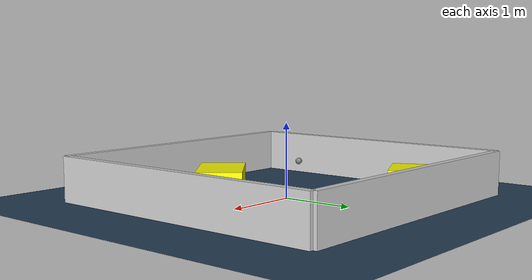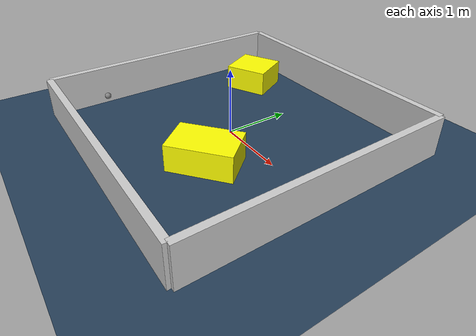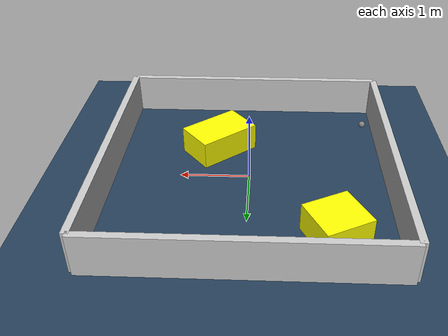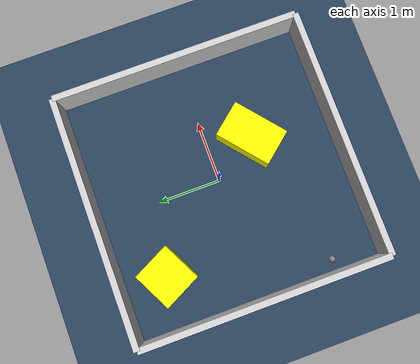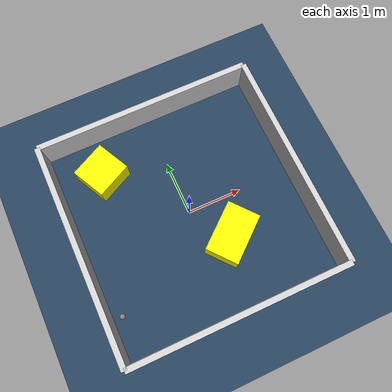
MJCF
<?xml version="1.0" ?>
<mujoco model="generated_environment">
  <option timestep="0.01" integrator="RK4" cone="elliptic"/>
  <default>
    <geom density="1"/>
  </default>
  <asset>
    <texture builtin="gradient" height="3072" rgb1="0.3 0.5 0.7" rgb2="0 0 0" type="skybox" width="512"/>
    <texture builtin="checker" height="300" mark="edge" markrgb="0.8 0.8 0.8" name="groundplane" rgb1="0.2 0.3 0.4" rgb2="0.1 0.2 0.3" type="2d" width="300"/>
    <material name="groundplane" reflectance="0.2" texrepeat="5 5" texture="groundplane" texuniform="true"/>
    <material name="robot" rgba="0.0 1.0 0.0 1"/>
  </asset>
  <worldbody>
    <light dir="0 0 -1" directional="true" pos="0 0 1.5"/>
    <geom condim="4" friction="1.0 0.005 0.001" material="groundplane" name="floor" size="0 0 0.05" type="plane"/>
    <body name="walls">
      <geom name="wall_1" condim="4" pos="-2.0 0.0 0.3" rgba="0.800000011920929 0.800000011920929 0.800000011920929 1.0" size="0.05 2.0 0.3" type="box"/>
      <geom name="wall_2" condim="4" pos="2.0 0.0 0.3" rgba="0.800000011920929 0.800000011920929 0.800000011920929 1.0" size="0.05 2.0 0.3" type="box"/>
      <geom name="wall_3" condim="4" pos="0.0 -2.0 0.3" rgba="0.800000011920929 0.800000011920929 0.800000011920929 1.0" size="2.0 0.05 0.3" type="box"/>
      <geom name="wall_4" condim="4" pos="0.0 2.0 0.3" rgba="0.800000011920929 0.800000011920929 0.800000011920929 1.0" size="2.0 0.05 0.3" type="box"/>
    </body>
    <body name="robot">
      <joint name="joint_x" type="slide" pos="0 0 0" axis="1 0 0"/>
      <joint name="joint_y" type="slide" pos="0 0 0" axis="0 1 0"/>
      <geom name="robot" type="sphere" pos="-1.7652806071947706 -1.214284178166341 0.2" size="0.05" mass="5." friction="1.0 0.005 0.0001" condim="4"/>
      <site name="sensor_ball"/>
    </body>
    <body name="obstacle_1_movable">
      <geom name="obstacle_1_movable" condim="4" pos="0.48881093120089414 -0.7179775816954825 0.2" euler="0 0 39.79392377710227" friction="1.0 0.005 0.001" rgba="1 1 0 1" size="0.46675559472392564 0.30180936869130226 0.2" type="box" mass="0.1"/>
      <joint type="free"/>
    </body>
    <body name="obstacle_2_movable">
      <geom name="obstacle_2_movable" condim="4" pos="-1.1415486645882889 1.261199170202844 0.2" euler="0 0 26.739231683765485" friction="1.0 0.005 0.001" rgba="1 1 0 1" size="0.3411427891606983 0.3253262142408692 0.2" type="box" mass="0.1"/>
      <joint type="free"/>
    </body>
  </worldbody>
  <actuator>
    <motor name="actuator_x" joint="joint_x" gear="1" ctrlrange="-1 1"/>
    <motor name="actuator_y" joint="joint_y" gear="1" ctrlrange="-1 1"/>
  </actuator>
</mujoco>
